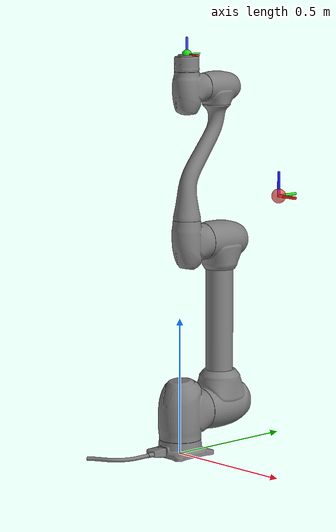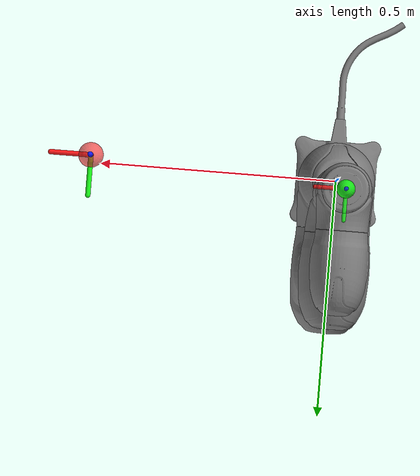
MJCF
<?xml version="1.0" encoding="utf-8"?>
<mujoco model="doosan_m1013">

  <compiler angle="radian" autolimits="true" meshdir="meshes/m1013_stl"/>

  <option timestep="0.002" gravity="0 0 -9.81" integrator="RK4"/>

  <visual>
    <headlight diffuse="0.7 0.7 0.7" ambient="0.4 0.4 0.4" specular="0.1 0.1 0.1"/>
    <rgba haze="0.15 0.25 0.35 1"/>
    <global azimuth="150" elevation="-25"/>
  </visual>

  <asset>
    <texture type="skybox" builtin="gradient"
             rgb1="0.4 0.6 0.8" rgb2="0.05 0.05 0.05" width="512" height="3072"/>
    <texture type="2d" name="groundplane" builtin="checker" mark="edge"
             rgb1="0.2 0.2 0.2" rgb2="0.1 0.1 0.1" markrgb="0.6 0.6 0.6"
             width="300" height="300"/>
    <material name="groundplane" texture="groundplane" texuniform="true"
              texrepeat="4 4" reflectance="0.1"/>
    <material name="target_mat" rgba="1.0 0.2 0.2 0.7"/>
    <material name="ee_mat"     rgba="0.1 0.9 0.1 1.0"/>

    <!-- M1013 White meshes (URDF scale=0.001) -->
    <mesh name="base_mesh"   file="MF1013_0_0.stl" scale="0.001 0.001 0.001"/>
    <mesh name="link1_mesh"  file="MF1013_1_0.stl" scale="0.001 0.001 0.001"/>
    <mesh name="link2_mesh0" file="MF1013_2_0.stl" scale="0.001 0.001 0.001"/>
    <mesh name="link2_mesh1" file="MF1013_2_1.stl" scale="0.001 0.001 0.001"/>
    <mesh name="link2_mesh2" file="MF1013_2_2.stl" scale="0.001 0.001 0.001"/>
    <mesh name="link3_mesh"  file="MF1013_3_0.stl" scale="0.001 0.001 0.001"/>
    <mesh name="link4_mesh0" file="MF1013_4_0.stl" scale="0.001 0.001 0.001"/>
    <mesh name="link4_mesh1" file="MF1013_4_1.stl" scale="0.001 0.001 0.001"/>
    <mesh name="link5_mesh"  file="MF1013_5_0.stl" scale="0.001 0.001 0.001"/>
    <mesh name="link6_mesh"  file="MF1013_6_0.stl" scale="0.001 0.001 0.001"/>
  </asset>

  <worldbody>
    <geom name="floor" size="0 0 0.05" type="plane" material="groundplane" rgba="0 0 0 0"/>
    <light pos="0 0 3" dir="0 0 -1" diffuse="0.8 0.8 0.8" specular="0.2 0.2 0.2"/>

    <!-- Target marker (mocap) -->
    <body name="target" pos="0.5 0.0 1.0" mocap="true">
      <geom name="target_geom"   type="sphere"  size="0.025"
            material="target_mat" contype="0" conaffinity="0"/>
      <geom name="target_axis_x" type="capsule" fromto="0 0 0 0.08 0 0" size="0.005"
            rgba="1.0 0.1 0.1 1.0" contype="0" conaffinity="0"/>
      <geom name="target_axis_y" type="capsule" fromto="0 0 0 0 0.08 0" size="0.005"
            rgba="0.1 1.0 0.1 1.0" contype="0" conaffinity="0"/>
      <geom name="target_axis_z" type="capsule" fromto="0 0 0 0 0 0.08" size="0.005"
            rgba="0.1 0.1 1.0 1.0" contype="0" conaffinity="0"/>
    </body>

    <body name="obs_0" mocap="true" pos="0 0 -100">
      <geom name="obs_0_s" type="sphere"  size="0.05"           rgba="0 0 0 0" contype="0" conaffinity="0"/>
      <geom name="obs_0_b" type="box"     size="0.05 0.05 0.05" rgba="0 0 0 0" contype="0" conaffinity="0"/>
      <geom name="obs_0_c" type="capsule" size="0.04 0.10"      rgba="0 0 0 0" contype="0" conaffinity="0"/>
    </body>
    <body name="obs_1" mocap="true" pos="0 0 -100">
      <geom name="obs_1_s" type="sphere"  size="0.05"           rgba="0 0 0 0" contype="0" conaffinity="0"/>
      <geom name="obs_1_b" type="box"     size="0.05 0.05 0.05" rgba="0 0 0 0" contype="0" conaffinity="0"/>
      <geom name="obs_1_c" type="capsule" size="0.04 0.10"      rgba="0 0 0 0" contype="0" conaffinity="0"/>
    </body>
    <body name="obs_2" mocap="true" pos="0 0 -100">
      <geom name="obs_2_s" type="sphere"  size="0.05"           rgba="0 0 0 0" contype="0" conaffinity="0"/>
      <geom name="obs_2_b" type="box"     size="0.05 0.05 0.05" rgba="0 0 0 0" contype="0" conaffinity="0"/>
      <geom name="obs_2_c" type="capsule" size="0.04 0.10"      rgba="0 0 0 0" contype="0" conaffinity="0"/>
    </body>
    <body name="obs_3" mocap="true" pos="0 0 -100">
      <geom name="obs_3_s" type="sphere"  size="0.05"           rgba="0 0 0 0" contype="0" conaffinity="0"/>
      <geom name="obs_3_b" type="box"     size="0.05 0.05 0.05" rgba="0 0 0 0" contype="0" conaffinity="0"/>
      <geom name="obs_3_c" type="capsule" size="0.04 0.10"      rgba="0 0 0 0" contype="0" conaffinity="0"/>
    </body>
    <body name="obs_4" mocap="true" pos="0 0 -100">
      <geom name="obs_4_s" type="sphere"  size="0.05"           rgba="0 0 0 0" contype="0" conaffinity="0"/>
      <geom name="obs_4_b" type="box"     size="0.05 0.05 0.05" rgba="0 0 0 0" contype="0" conaffinity="0"/>
      <geom name="obs_4_c" type="capsule" size="0.04 0.10"      rgba="0 0 0 0" contype="0" conaffinity="0"/>
    </body>
    <body name="obs_5" mocap="true" pos="0 0 -100">
      <geom name="obs_5_s" type="sphere"  size="0.05"           rgba="0 0 0 0" contype="0" conaffinity="0"/>
      <geom name="obs_5_b" type="box"     size="0.05 0.05 0.05" rgba="0 0 0 0" contype="0" conaffinity="0"/>
      <geom name="obs_5_c" type="capsule" size="0.04 0.10"      rgba="0 0 0 0" contype="0" conaffinity="0"/>
    </body>
    <body name="obs_6" mocap="true" pos="0 0 -100">
      <geom name="obs_6_s" type="sphere"  size="0.05"           rgba="0 0 0 0" contype="0" conaffinity="0"/>
      <geom name="obs_6_b" type="box"     size="0.05 0.05 0.05" rgba="0 0 0 0" contype="0" conaffinity="0"/>
      <geom name="obs_6_c" type="capsule" size="0.04 0.10"      rgba="0 0 0 0" contype="0" conaffinity="0"/>
    </body>
    <body name="obs_7" mocap="true" pos="0 0 -100">
      <geom name="obs_7_s" type="sphere"  size="0.05"           rgba="0 0 0 0" contype="0" conaffinity="0"/>
      <geom name="obs_7_b" type="box"     size="0.05 0.05 0.05" rgba="0 0 0 0" contype="0" conaffinity="0"/>
      <geom name="obs_7_c" type="capsule" size="0.04 0.10"      rgba="0 0 0 0" contype="0" conaffinity="0"/>
    </body>
    <body name="obs_8" mocap="true" pos="0 0 -100">
      <geom name="obs_8_s" type="sphere"  size="0.05"           rgba="0 0 0 0" contype="0" conaffinity="0"/>
      <geom name="obs_8_b" type="box"     size="0.05 0.05 0.05" rgba="0 0 0 0" contype="0" conaffinity="0"/>
      <geom name="obs_8_c" type="capsule" size="0.04 0.10"      rgba="0 0 0 0" contype="0" conaffinity="0"/>
    </body>
    <body name="obs_9" mocap="true" pos="0 0 -100">
      <geom name="obs_9_s" type="sphere"  size="0.05"           rgba="0 0 0 0" contype="0" conaffinity="0"/>
      <geom name="obs_9_b" type="box"     size="0.05 0.05 0.05" rgba="0 0 0 0" contype="0" conaffinity="0"/>
      <geom name="obs_9_c" type="capsule" size="0.04 0.10"      rgba="0 0 0 0" contype="0" conaffinity="0"/>
    </body>

    <!-- ── Robot Base ─────────────────────────────────────────────── -->
    <body name="base_link" pos="0 0 0">
      <geom name="base_geom" type="mesh" mesh="base_mesh" contype="0" conaffinity="0"/>
      <geom name="base_col"  type="cylinder" size="0.105 0.225" pos="0 0 0.225"
            contype="0" conaffinity="0" rgba="0 0 0 0"/>

      <body name="link1" pos="0 0 0.1525" quat="1 0 0 0">
        <joint name="joint1" type="hinge" axis="0 0 1"
               range="-6.2832 6.2832" damping="5.0" armature="0.4"/>
        <geom name="link1_geom" type="mesh" mesh="link1_mesh" contype="0" conaffinity="0"/>
        <geom name="link1_col"  type="cylinder" size="0.09 0.17" pos="0 0 0.12"
              contype="0" conaffinity="0" rgba="0 0 0 0"/>

        <body name="link2" pos="0 0.0345 0" quat="0.5 -0.5 -0.5 -0.5">
          <joint name="joint2" type="hinge" axis="0 0 1"
                 range="-6.2832 6.2832" damping="5.0" armature="0.4"/>
          <geom name="link2_geom0" type="mesh" mesh="link2_mesh0" contype="0" conaffinity="0"/>
          <geom name="link2_geom1" type="mesh" mesh="link2_mesh1" contype="0" conaffinity="0"/>
          <geom name="link2_geom2" type="mesh" mesh="link2_mesh2" contype="0" conaffinity="0"/>
          <geom name="link2_col"   type="capsule" fromto="0.05 0 0 0.57 0 0" size="0.06"
                contype="0" conaffinity="0" rgba="0 0 0 0"/>

          <body name="link3" pos="0.62 0 0" quat="0.7071 0 0 0.7071">
            <joint name="joint3" type="hinge" axis="0 0 1"
                   range="-2.7925 2.7925" damping="3.0" armature="0.3"/>
            <geom name="link3_geom" type="mesh" mesh="link3_mesh" contype="0" conaffinity="0"/>
            <geom name="link3_col"  type="capsule" fromto="0 -0.05 0 0 -0.51 0" size="0.055"
                  contype="0" conaffinity="0" rgba="0 0 0 0"/>

            <body name="link4" pos="0 -0.559 0" quat="0.7071 0.7071 0 0">
              <joint name="joint4" type="hinge" axis="0 0 1"
                     range="-6.2832 6.2832" damping="1.5" armature="0.1"/>
              <geom name="link4_geom0" type="mesh" mesh="link4_mesh0" contype="0" conaffinity="0"/>
              <geom name="link4_geom1" type="mesh" mesh="link4_mesh1" contype="0" conaffinity="0"/>
              <geom name="link4_col"   type="sphere" size="0.06"
                    contype="0" conaffinity="0" rgba="0 0 0 0"/>

              <body name="link5" pos="0 0 0" quat="0.7071 -0.7071 0 0">
                <joint name="joint5" type="hinge" axis="0 0 1"
                       range="-6.2832 6.2832" damping="1.5" armature="0.1"/>
                <geom name="link5_geom" type="mesh" mesh="link5_mesh" contype="0" conaffinity="0"/>
                <geom name="link5_col"  type="capsule" fromto="0 0 0 0 -0.11 0" size="0.04"
                      contype="0" conaffinity="0" rgba="0 0 0 0"/>

                <body name="link6" pos="0 -0.121 0" quat="0.7071 0.7071 0 0">
                  <joint name="joint6" type="hinge" axis="0 0 1"
                         range="-6.2832 6.2832" damping="0.8" armature="0.05"/>
                  <geom name="link6_geom" type="mesh" mesh="link6_mesh" contype="0" conaffinity="0"/>
                  <geom name="link6_col"  type="cylinder" size="0.04 0.03"
                        contype="0" conaffinity="0" rgba="0 0 0 0"/>

                  <site name="ee_site" pos="0 0 0" size="0.015" rgba="0.1 0.9 0.1 1"/>
                  <geom name="ee_marker" type="sphere"  size="0.018"
                        pos="0 0 0" material="ee_mat" contype="0" conaffinity="0"/>
                  <geom name="ee_axis_x" type="capsule" fromto="0 0 0 0.06 0 0" size="0.004"
                        rgba="1.0 0.1 0.1 0.8" contype="0" conaffinity="0"/>
                  <geom name="ee_axis_y" type="capsule" fromto="0 0 0 0 0.06 0" size="0.004"
                        rgba="0.1 1.0 0.1 0.8" contype="0" conaffinity="0"/>
                  <geom name="ee_axis_z" type="capsule" fromto="0 0 0 0 0 0.06" size="0.004"
                        rgba="0.1 0.1 1.0 0.8" contype="0" conaffinity="0"/>
                </body>
              </body>
            </body>
          </body>
        </body>
      </body>
    </body>
  </worldbody>

  <!-- Torque actuators: ctrl = normalized torque [-1, 1], gear = max torque (Nm) -->
  <actuator>
    <motor name="act1" joint="joint1" gear="300" ctrllimited="true" ctrlrange="-1 1"/>
    <motor name="act2" joint="joint2" gear="300" ctrllimited="true" ctrlrange="-1 1"/>
    <motor name="act3" joint="joint3" gear="200" ctrllimited="true" ctrlrange="-1 1"/>
    <motor name="act4" joint="joint4" gear="100" ctrllimited="true" ctrlrange="-1 1"/>
    <motor name="act5" joint="joint5" gear="100" ctrllimited="true" ctrlrange="-1 1"/>
    <motor name="act6" joint="joint6" gear="50"  ctrllimited="true" ctrlrange="-1 1"/>
  </actuator>

</mujoco>
